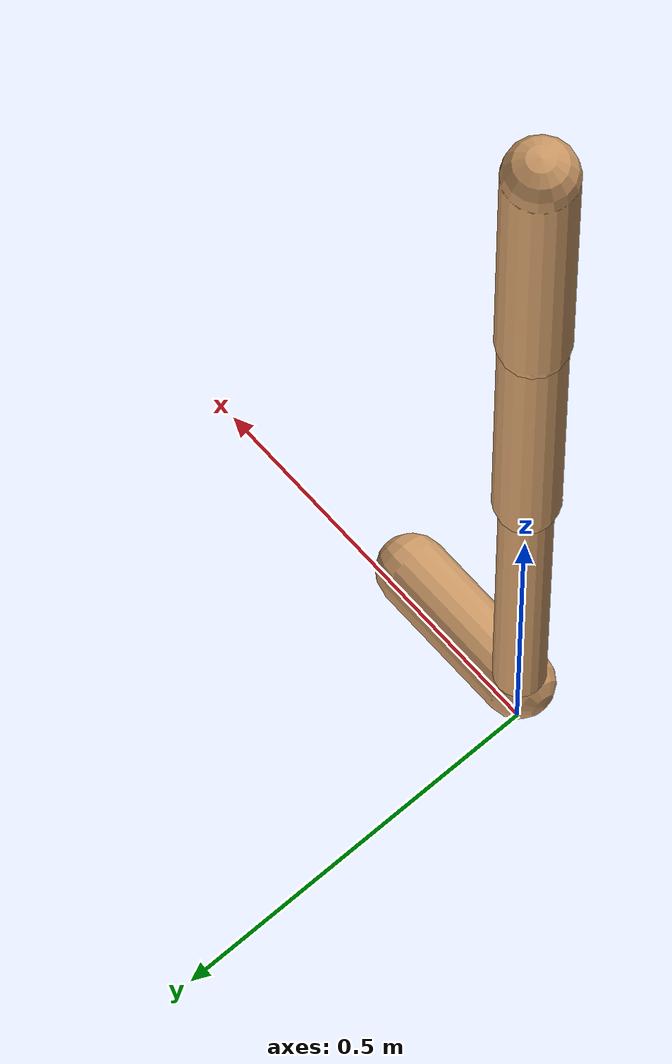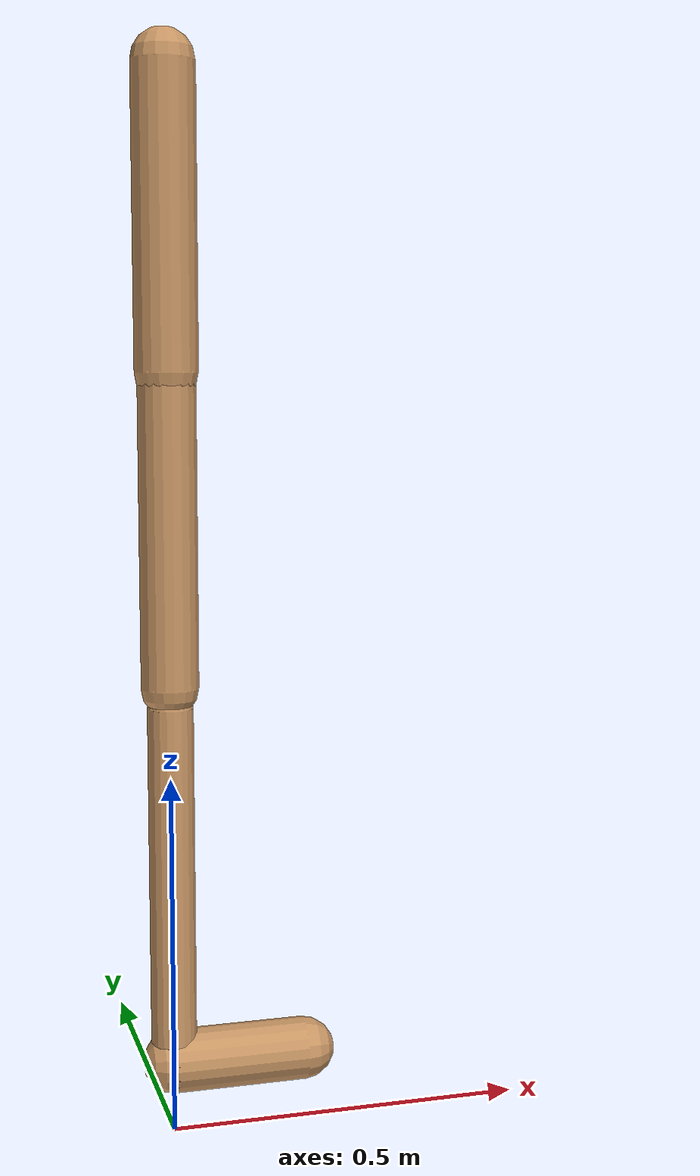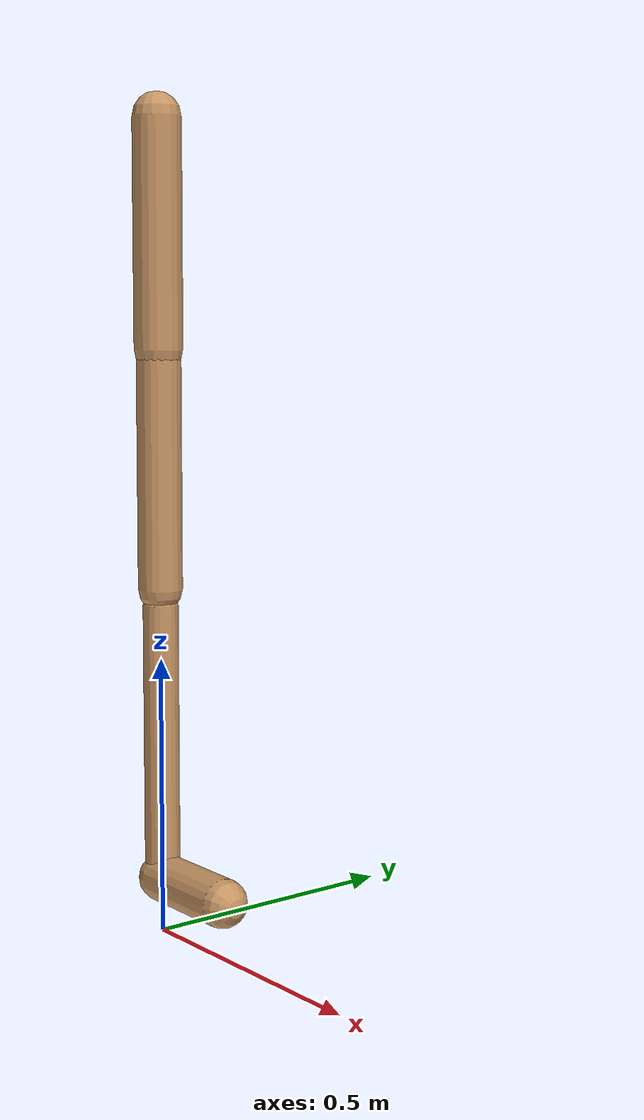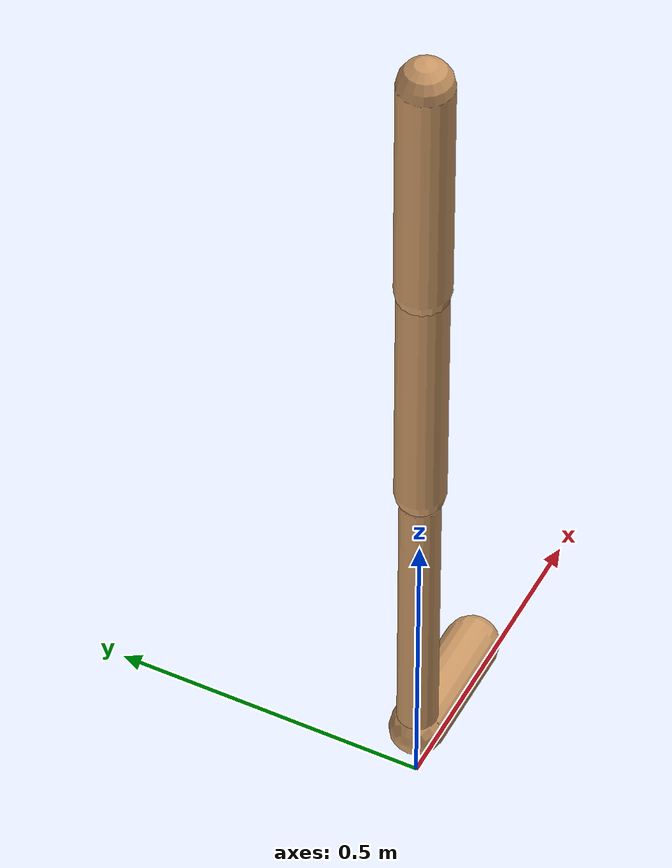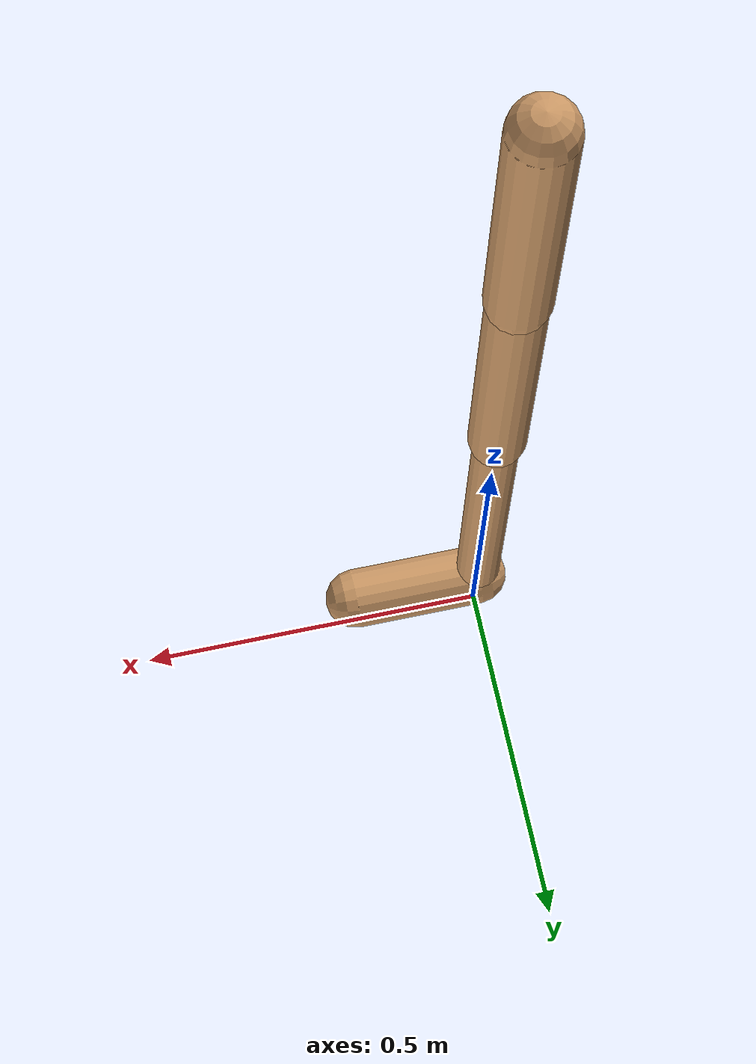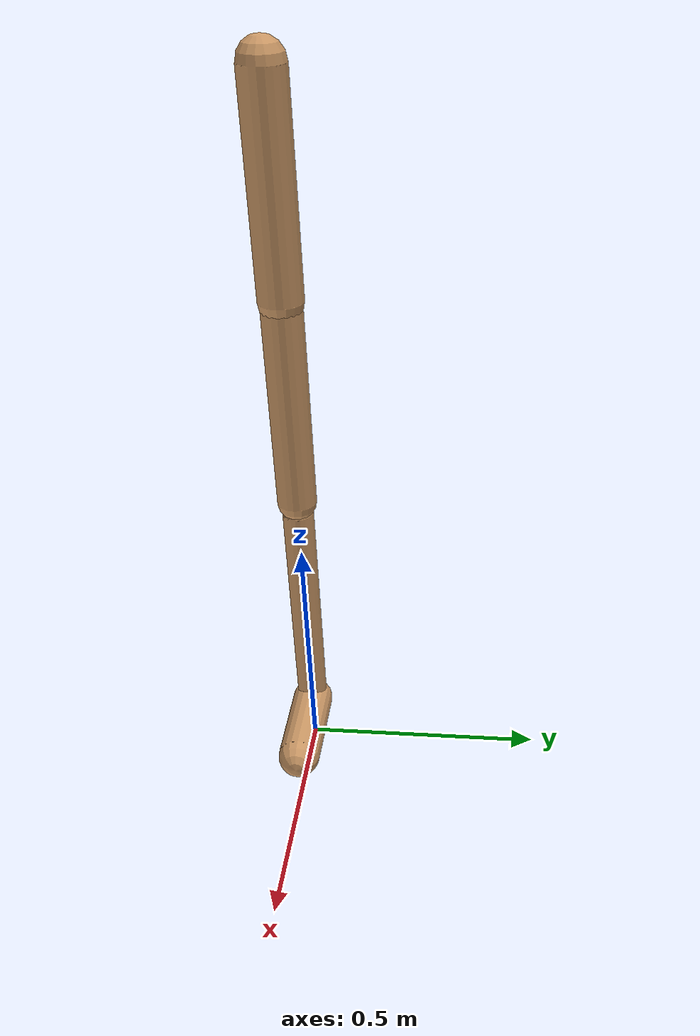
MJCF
<mujoco model="walker2d">
  <compiler angle="degree" coordinate="global" inertiafromgeom="true" />
  <default>
    <joint armature="0.01" damping=".1" limited="true" />
    <geom conaffinity="0" condim="3" contype="1" density="1000" friction="0.8 .1 .1" rgba="0.8 0.6 .4 1" />
  </default>
  <option integrator="RK4" timestep="0.002" />
  <worldbody>

    <body name="torso" pos="0 0 -0.05723145587212839">
      <joint armature="0" axis="1 0 0" damping="0" limited="false" name="ignorex" pos="0 0 0" stiffness="0" type="slide" />
      <joint armature="0" axis="0 0 1" damping="0" limited="false" name="ignorez" pos="0 0 0" ref="1.25" stiffness="0" type="slide" />
      <joint armature="0" axis="0 1 0" damping="0" limited="false" name="ignorey" pos="0 0 0" stiffness="0" type="hinge" />
      <geom fromto="0 0 1.45 0 0 1.05" name="torso_geom" size="0.04296846412809508" type="capsule" />
      <body name="thigh">
        <joint axis="0 -1 0" name="thigh_joint" pos="0 0 1.05" range="-150 0" type="hinge" />
        <geom fromto="0.0 0.0 1.05 0.0 0.0 0.6271096369920608" name="thigh_geom" size="0.03946321780652024" type="capsule" />
        <body name="leg" pos="0.0 0.0 0.027109636992060815">
          <joint axis="0 -1 0" name="leg_joint" pos="0 0 0.6" range="-150 0" type="hinge" />
          <geom fromto="0.0 0.0 0.6 0.0 0.0 0.13012181888006757" name="leg_geom" size="0.03157057424521619" type="capsule" />
          <body name="foot" pos="0.0 0.0 0.03012181888006757">
            <joint axis="0 -1 0" name="foot_joint" pos="0 0 0.1" range="-45 45" type="hinge" />
            <geom fromto="0.0 0.0 0.1 0.1852335991012518 0.0 0.1" name="foot_geom" size="0.043349960947974366" type="capsule" />
          </body>
        </body>
      </body>

      <body name="thigh_left">
        <joint axis="0 -1 0" name="thigh_left_joint" pos="0 0 1.05" range="-150 0" type="hinge" />
        <geom fromto="0.0 0.0 1.05 0.0 0.0 0.6271096369920608" name="thigh_left_geom" rgba=".7 .3 .6 1" size="0.03946321780652024" type="capsule" />
        <body name="leg_left" pos="0.0 0.0 0.027109636992060815">
          <joint axis="0 -1 0" name="leg_left_joint" pos="0 0 0.6" range="-150 0" type="hinge" />
          <geom fromto="0.0 0.0 0.6 0.0 0.0 0.13012181888006757" name="leg_left_geom" rgba=".7 .3 .6 1" size="0.03157057424521619" type="capsule" />
          <body name="foot_left" pos="0.0 0.0 0.03012181888006757">
            <joint axis="0 -1 0" name="foot_left_joint" pos="0 0 0.1" range="-45 45" type="hinge" />
            <geom fromto="0.0 0.0 0.1 0.1852335991012518 0.0 0.1" name="foot_left_geom" rgba=".7 .3 .6 1" size="0.043349960947974366" type="capsule" />
          </body>
        </body>
      </body>
    </body>
  </worldbody>
  <actuator>

    <motor ctrllimited="true" ctrlrange="-1.0 1.0" gear="100" joint="thigh_joint" />
    <motor ctrllimited="true" ctrlrange="-1.0 1.0" gear="100" joint="leg_joint" />
    <motor ctrllimited="true" ctrlrange="-1.0 1.0" gear="100" joint="foot_joint" />
    <motor ctrllimited="true" ctrlrange="-1.0 1.0" gear="100" joint="thigh_left_joint" />
    <motor ctrllimited="true" ctrlrange="-1.0 1.0" gear="100" joint="leg_left_joint" />
    <motor ctrllimited="true" ctrlrange="-1.0 1.0" gear="100" joint="foot_left_joint" />

  </actuator>
</mujoco>
